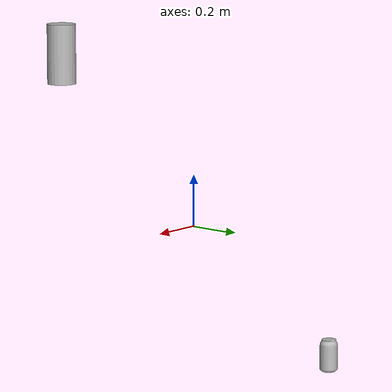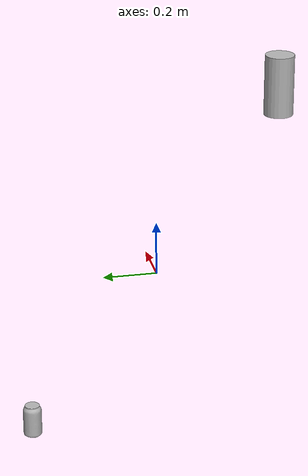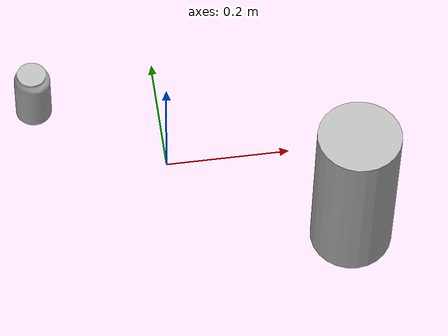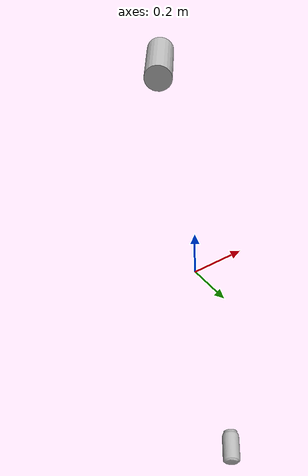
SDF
<?xml version='1.0'?>
<sdf version='1.7'>
  <model name='world'>
    <model name='beer'>
      <link name='link'>
        <pose>0 0 0.115 0 -0 0</pose>
        <inertial>
          <mass>0.39</mass>
          <inertia>
            <ixx>0.00058</ixx>
            <ixy>0</ixy>
            <ixz>0</ixz>
            <iyy>0.00058</iyy>
            <iyz>0</iyz>
            <izz>0.00019</izz>
          </inertia>
        </inertial>
        <collision name='collision'>
          <geometry>
            <cylinder>
              <radius>0.055</radius>
              <length>0.23</length>
            </cylinder>
          </geometry>
        </collision>
        <visual name='visual'>
          <geometry>
            <cylinder>
              <radius>0.055</radius>
              <length>0.23</length>
            </cylinder>
          </geometry>
          <material>
            <script>
              <uri>model://beer/materials/scripts</uri>
              <uri>model://beer/materials/textures</uri>
              <name>Beer/Diffuse</name>
            </script>
          </material>
        </visual>
      </link>
      <pose>0.185816 -0.503339 0.523369 0 -0 0</pose>
    </model>
    <model name='coke_can'>
      <link name='link'>
        <inertial>
          <pose>0 0 0.06 0 -0 0</pose>
          <mass>0.39</mass>
          <inertia>
            <ixx>0.00055575</ixx>
            <ixy>0</ixy>
            <ixz>0</ixz>
            <iyy>0.00055575</iyy>
            <iyz>0</iyz>
            <izz>0.0001755</izz>
          </inertia>
        </inertial>
        <collision name='collision'>
          <pose>0.003937 0.004724 -0.18 0 -0 0</pose>
          <geometry>
            <mesh>
              <uri>model://coke_can/meshes/coke_can.dae</uri>
            </mesh>
          </geometry>
          <surface>
            <friction>
              <ode>
                <mu>1</mu>
                <mu2>1</mu2>
              </ode>
            </friction>
            <contact>
              <ode>
                <kp>1e+07</kp>
                <kd>1</kd>
                <min_depth>0.001</min_depth>
                <max_vel>0.1</max_vel>
              </ode>
            </contact>
          </surface>
        </collision>
        <visual name='visual'>
          <pose>0.003937 0.004724 -0.18 0 -0 0</pose>
          <geometry>
            <mesh>
              <uri>model://coke_can/meshes/coke_can.dae</uri>
            </mesh>
          </geometry>
        </visual>
      </link>
      <pose>-0.185816 0.50334 -0.52337 0 -0 0</pose>
    </model>
    <static>0</static>
    <allow_auto_disable>1</allow_auto_disable>
  </model>
</sdf>
